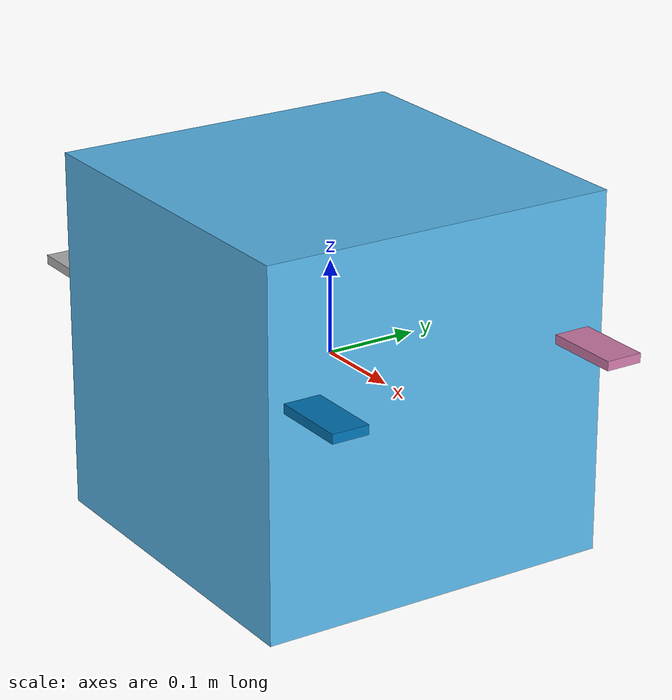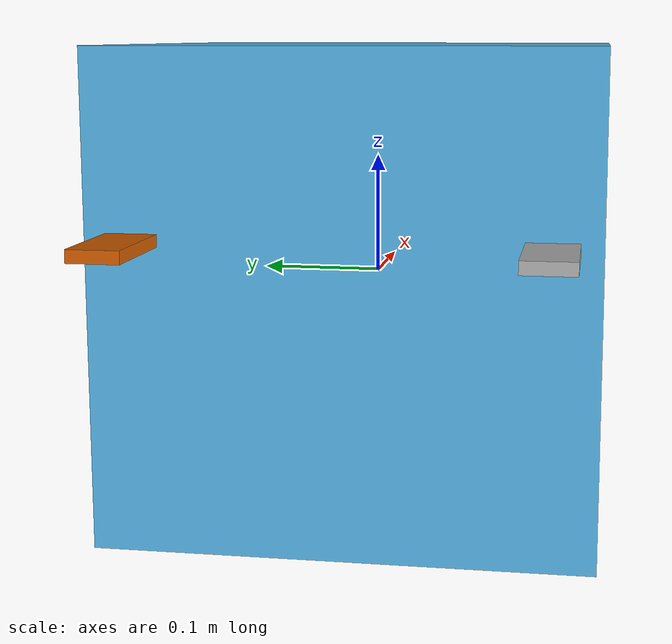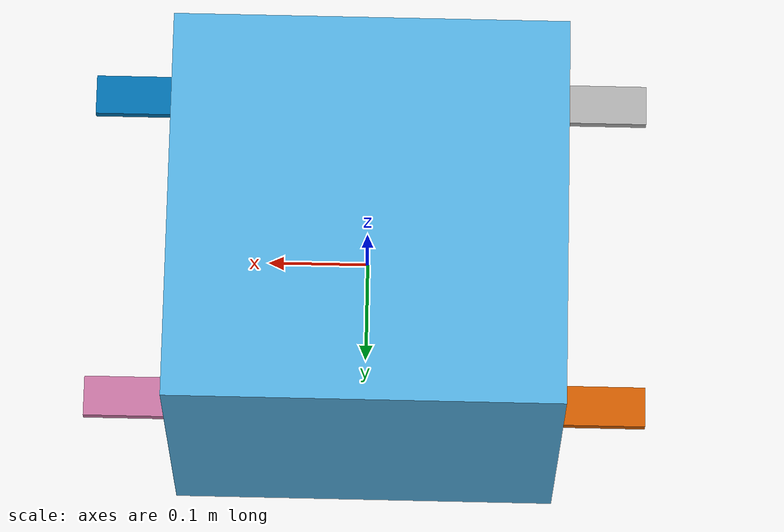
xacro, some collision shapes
<robot name="protoflyer" xmlns:xacro="http://www.ros.org/wiki/xacro">

  <xacro:include filename="$(find eolab_description)/payloads/core_sensors.xacro"/>
  <xacro:include filename="$(find eolab_description)/payloads/rgb_generic.xacro"/>

  <xacro:include filename="$(find eolab_description)/propulsions/dji_e305.xacro"/>

  <xacro:property name="root_frame" value="body_frame"/>

  <xacro:macro name="box_inertial" params="mass x y z xyz:='0 0 0' rpy:='0 0 0'">
    <inertial>
      <origin xyz="${xyz}" rpy="${rpy}"/>
      <mass value="${mass}"/>
      <inertia
        ixx="${(1/12.0)*mass*(y*y + z*z)}"
        iyy="${(1/12.0)*mass*(x*x + z*z)}"
        izz="${(1/12.0)*mass*(x*x + y*y)}"
        ixy="0.0" ixz="0.0" iyz="0.0"/>
    </inertial>
  </xacro:macro>

  <link name="base_link"/>

  <joint name="${root_frame}_joint" type="fixed">
    <origin xyz="0 0 0" rpy="0 0 0"/>
    <parent link="base_link"/>
    <child link="${root_frame}_link"/>
  </joint>

  <link name="${root_frame}_link">
    <visual>
      <geometry>
        <mesh filename="file://$(find eolab_description)/drones/meshes/protoflyer.obj" scale="1 1 1"/>
      </geometry>
    </visual>
    <collision>
      <geometry>
        <box size="0.39 0.39 0.39"/>
      </geometry>
    </collision>
    <xacro:box_inertial mass="0.5" x="0.4" y="0.4" z="0.4"/>
  </link>

  <xacro:core_sensors link="${root_frame}_link"/>

  <xacro:rgb_generic name="rgb_camera" parent_link="${root_frame}_link" system="gz">
    <origin xyz="0 0 -0.05" rpy="0 ${radians(90)} 0"/>
      <!-- rotation in roll to look downward -->
  </xacro:rgb_generic>

  <xacro:dji_e305 number="0" parent="${root_frame}_link" direction="ccw">
    <origin xyz="0.158 -0.158 0.05" rpy="0 0 0"/>
  </xacro:dji_e305>

  <xacro:dji_e305 number="1" parent="${root_frame}_link" direction="ccw">
    <origin xyz="-0.158 0.158 0.05" rpy="0 0 0"/>
  </xacro:dji_e305>

  <xacro:dji_e305 number="2" parent="${root_frame}_link" direction="cw">
    <origin xyz="0.158 0.158 0.05" rpy="0 0 0"/>
  </xacro:dji_e305>

  <xacro:dji_e305 number="3" parent="${root_frame}_link" direction="cw">
    <origin xyz="-0.158 -0.158 0.05" rpy="0 0 0"/>
  </xacro:dji_e305>

</robot>

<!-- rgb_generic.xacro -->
<robot xmlns:xacro="http://www.ros.org/wiki/xacro">

  <xacro:macro name="rgb_generic"
               params="
                 name
                 parent_link
                 namespace:=''
                 system:='gz'
                 mass:=0.05
                 width:=0.06
                 height:=0.06
                 depth:=0.10
                 image_width:='1080'
                 image_height:='720'
                 hfov:='1.047'
                 update_rate:='30'
                 near:='0.1'
                 far:='100'
                 visualize:='true'
                 *origin">

    <!-- Inertia (simple box approximation) -->
    <xacro:property name="ixx" value="${(1/12.0) * mass * (height*height + depth*depth)}"/>
    <xacro:property name="iyy" value="${(1/12.0) * mass * (width*width + depth*depth)}"/>
    <xacro:property name="izz" value="${(1/12.0) * mass * (width*width + height*height)}"/>

    <!-- Mount / body frame -->
    <link name="${name}_link">
      <inertial>
        <mass value="${mass}"/>
        <inertia ixx="${ixx}" ixy="0" ixz="0" iyy="${iyy}" iyz="0" izz="${izz}"/>
      </inertial>
    </link>

    <!-- Parent -> mount fixed joint (your placement) -->
    <joint name="${name}_joint" type="fixed">
      <parent link="${parent_link}"/>

      <child link="${name}_link"/>
      <xacro:insert_block name="origin"/>
    </joint>

    <!-- Optical frame + static transform -->
    <link name="${name}_optical_frame"/>
    <joint name="${name}_optical_joint" type="fixed">
      <parent link="${name}_link"/>
      <child link="${name}_optical_frame"/>
      <!-- mount (x fwd,y left,z up) -> optical (x right,y down,z fwd) -->
      <origin xyz="0 0 0" rpy="${-radians(90)} 0 ${-radians(90)}"/>
    </joint>

    <!-- Gazebo camera sensor (kept generic) -->
    <xacro:if value="${system == 'gz'}">
      <gazebo reference="${name}_link">
        <sensor name="${name}_sensor" type="camera">
          <camera>
            <horizontal_fov>${hfov}</horizontal_fov>
            <image>
              <width>${image_width}</width>
              <height>${image_height}</height>
            </image>
            <clip>
              <near>${near}</near>
              <far>${far}</far>
            </clip>
          </camera>
          <always_on>1</always_on>
          <update_rate>${update_rate}</update_rate>
          <visualize>${visualize}</visualize>

        </sensor>
      </gazebo>
    </xacro:if>

  </xacro:macro>

</robot>

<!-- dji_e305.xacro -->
<robot name="dji_e305" xmlns:xacro="http://www.ros.org/wiki/xacro">

  <xacro:macro name="dji_e305" params="number parent direction *origin">

    <xacro:property name="prop_diameter" value="0.24"/>
    <xacro:property name="prop_weight" value="0.013"/>
    <!-- Recommended Max Thrust/RPM: 0.85kg / 800rmp/V 1400 rad/s-->
    <xacro:property name="prop_max_rad_per_sec" value="1400"/>
    <xacro:property name="motor_max_thrust_kgf" value="0.85"/>

    <link name="rotor_${number}">
      <origin xyz="0 0 0" rpy="0 0 0"/>
      <visual>
        <geometry>
          <box size="${prop_diameter} 0.04 0.01"/>
        </geometry>
      </visual>
      <collision>
        <geometry>
          <box size="${prop_diameter} 0.04 0.01"/>
        </geometry>
      </collision>
      <!-- real value heavy-->
      <xacro:box_inertial mass="${prop_weight}" x="${prop_diameter}" y="0.04" z="0.01"/>
    </link>
    <joint name="rotor_${number}_joint" type="continuous">
      <parent link="${parent}"/>
      <child link="rotor_${number}"/>
      <xacro:insert_block name="origin" />
      <axis xyz="0 0 1"/>
    </joint>
    <gazebo>
      <plugin filename="gz-sim-multicopter-motor-model-system" name="gz::sim::systems::MulticopterMotorModel">
        <jointName>rotor_${number}_joint</jointName>
        <linkName>rotor_${number}</linkName>
        <turningDirection>${direction}</turningDirection>
        <timeConstantUp>0.0125</timeConstantUp>
        <timeConstantDown>0.025</timeConstantDown>
        <maxRotVelocity>${prop_max_rad_per_sec}</maxRotVelocity>
        <motorConstant>4.25433673e-6</motorConstant> <!-- compute from: T/(rad sec)2 -->
        <momentConstant>0.016</momentConstant>
        <commandSubTopic>command/motor_speed</commandSubTopic>
        <actuator_number>${number}</actuator_number>
        <rotorDragCoefficient>8.06428e-05</rotorDragCoefficient>
        <rollingMomentCoefficient>1e-06</rollingMomentCoefficient>
        <rotorVelocitySlowdownSim>10</rotorVelocitySlowdownSim>
        <motorType>velocity</motorType>
      </plugin>
    </gazebo>
  </xacro:macro>

</robot>
